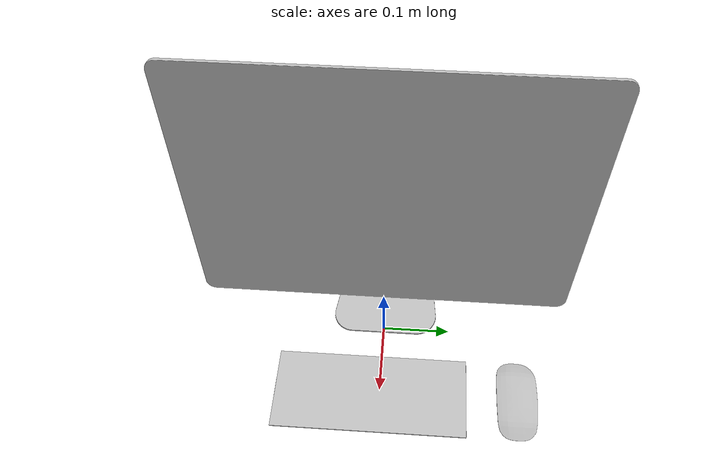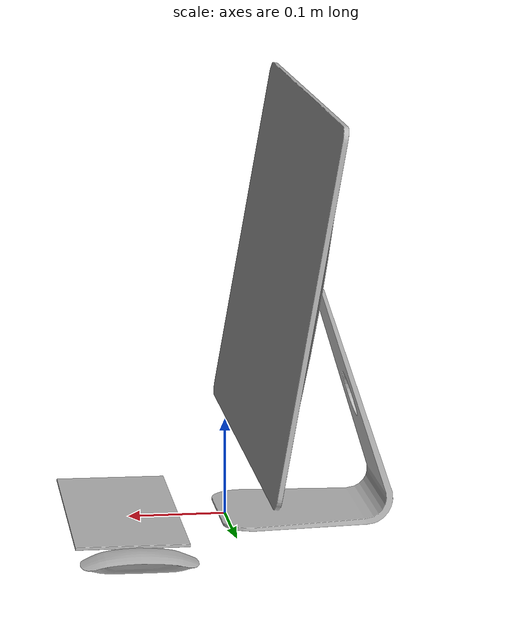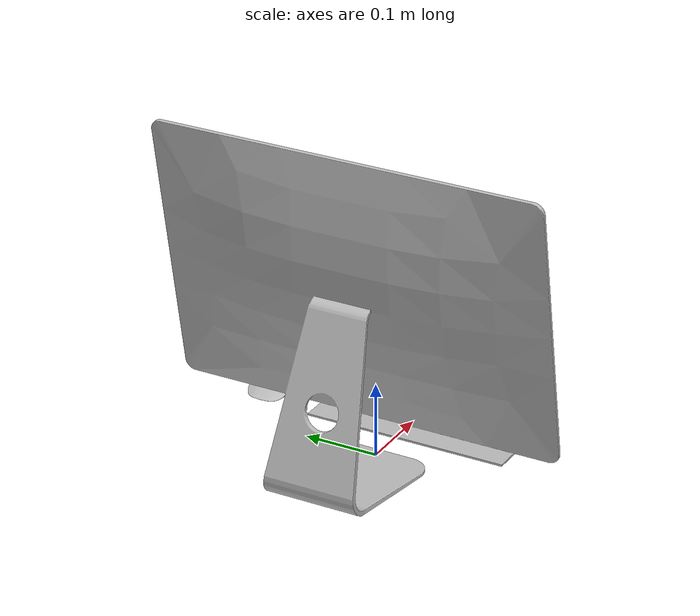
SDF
<?xml version="1.0" ?>
<sdf version="1.6">
  <model name="aws_robomaker_retail_Computer_01">
    <link name="link">
      <inertial>
        <mass>3</mass>
        <inertia>
          <ixx>0.120785</ixx>
          <ixy>0</ixy>
          <ixz>0</ixz>
          <iyy>0.0765512</iyy>
          <iyz>0</iyz>
          <izz>0.1004711</izz>
        </inertia>
      </inertial>
      <collision name="collision">
        <geometry>
          <mesh>
            <uri>file://models/aws_robomaker_retail_Computer_01/meshes/aws_Computer_01_collision.DAE</uri>
            <scale>1 1 1</scale>
          </mesh>
        </geometry>
      </collision>
      <visual name="visual">
	    <geometry>
          <mesh>
            <uri>file://models/aws_robomaker_retail_Computer_01/meshes/aws_Computer_01_visual.DAE</uri>
          </mesh>
        </geometry>
        <meta>
          <layer>1</layer>
        </meta>
      </visual>
    </link>
      <static>1</static>
  </model>
</sdf>
